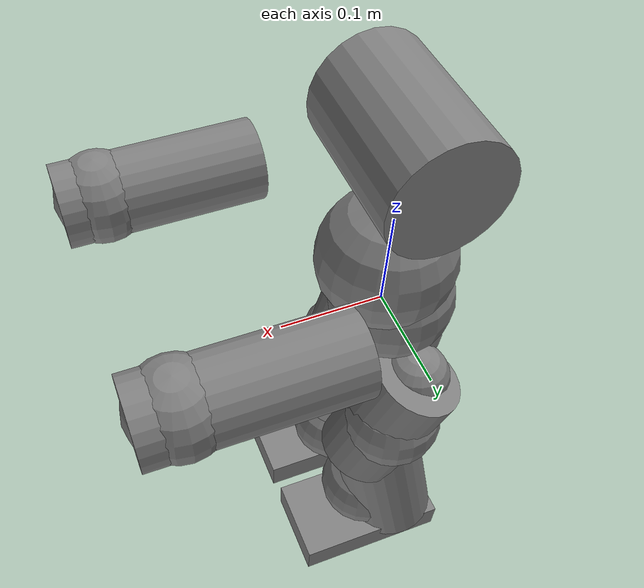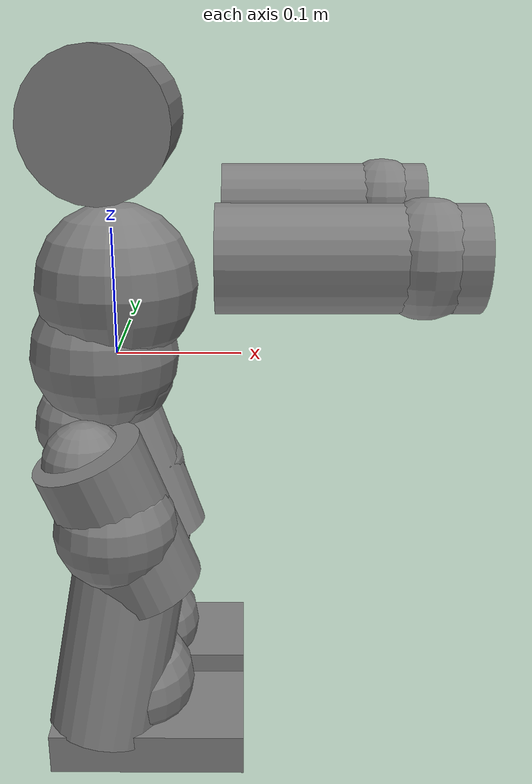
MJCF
<mujoco model="NAOH25V60">
  <compiler angle="radian"/>

  <worldbody>
    <geom size="0.04" pos="-0.03 0 -0.06"/>
    <geom size="0.0453" pos="0.0006 0 -0.015"/>
    <geom size="0.06" pos="-0.01 0 0"/>
    <geom size="0.0642" pos="0.0019 0 0.056"/>
    <body name="HeadYaw_link" pos="0 0 0.1265">
      <inertial pos="-1e-05 0 -0.02742" quat="0.70765 -0.00173495 0.00151894 0.706559" mass="0.07842" diaginertia="1.70396e-05 1.60324e-05 5.53348e-06"/>
      <joint name="HeadYaw" pos="0 0 0" axis="0 0 1" range="-2.08567 2.08567" actuatorfrcrange="-1.547 1.547"/>
      <body name="HeadPitch_link" quat="0.500002 -0.499999 -0.500001 -0.499997">
        <inertial pos="0.0544502 0.000377283 0.000506844" quat="0.999831 -0.00839856 -0.00270558 0.0161273" mass="1.90402" diaginertia="0.0037078 0.00362436 0.00247001"/>
        <joint name="HeadPitch" pos="0 0 0" axis="0 0 1" range="-0.671952 0.514872" actuatorfrcrange="-1.532 1.532"/>
        <geom size="0.053 0.0705" pos="0.053 0 0" quat="1.76038e-12 -1.32679e-06 1 -1.32679e-06" type="cylinder"/>
      </body>
    </body>
    <body name="LShoulderPitch_link" pos="0 0.098 0.1" quat="0.707105 -0.707108 0 0">
      <inertial pos="-0.00165 -0.000139999 -0.02663" quat="0.353499 0.572853 -0.442525 0.592494" mass="0.09304" diaginertia="2.02186e-05 1.91002e-05 1.30704e-05"/>
      <joint name="LShoulderPitch" pos="0 0 0" axis="0 0 1" range="-2.08567 2.08567" actuatorfrcrange="-1.329 1.329"/>
      <body name="LShoulderRoll_link" quat="0.500002 0.499999 -0.500001 0.499997">
        <inertial pos="0.00563 -0.02455 0.0033" quat="0.467645 0.46185 0.492756 0.570257" mass="0.15777" diaginertia="0.00027823 0.000242894 8.25818e-05"/>
        <joint name="LShoulderRoll" pos="0 0 0" axis="0 0 1" range="-0.314159 1.32645" actuatorfrcrange="-1.7835 1.7835"/>
        <body name="LElbowYaw_link" pos="0.015 -0.105 0" quat="0.707105 0.707108 0 0">
          <inertial pos="1.19332e-09 -0.00014 -0.02744" quat="-0.000545392 0.711779 -0.000696018 0.702403" mass="0.06483" diaginertia="2.76333e-05 2.66179e-05 5.592e-06"/>
          <joint name="LElbowYaw" pos="0 0 0" axis="0 0 1" range="-2.08567 2.08567" actuatorfrcrange="-1.547 1.547"/>
          <body name="LElbowRoll_link" quat="0.707105 -0.707108 0 0">
            <inertial pos="0.000206645 -0.0749538 5.58898e-05" quat="0.529427 0.528509 -0.470412 0.468079" mass="1.05536" diaginertia="0.00294834 0.00293619 0.000670399"/>
            <joint name="LElbowRoll" pos="0 0 0" axis="0 0 1" range="-1.54462 -0.0349066" actuatorfrcrange="-1.532 1.532"/>
            <geom size="0.036 0.08715" pos="0 -0.06485 0" quat="0.707105 0.707108 0 0" type="cylinder"/>
            <geom size="0.04" pos="0 -0.116 0" quat="0.707105 0 0 -0.707108"/>
            <body name="LWristYaw_link" pos="0 -0.05595 0" quat="0.707105 0.707108 0 0">
              <inertial pos="-0.000880001 0.00308 0.03434" quat="0.346526 0.607704 0.329318 0.634165" mass="0.18533" diaginertia="0.000137482 0.000131631 6.85194e-05"/>
              <joint name="LWristYaw" pos="0 0 0" axis="0 0 1" range="-1.82387 1.82387" actuatorfrcrange="-0.4075 0.4075"/>
            </body>
          </body>
        </body>
      </body>
    </body>
    <body name="LHipYawPitch_link" pos="0 0.05 -0.085" quat="0.270599 -0.65328 -0.653283 -0.270597">
      <inertial pos="0.00586237 -0.0183882 -0.012818" quat="0.708083 0.0259824 -0.435811 0.554988" mass="0.249404" diaginertia="0.000171156 0.000145675 0.000131938"/>
      <joint name="LHipYawPitch" pos="0 0 0" axis="0 0 1" range="-1.14529 0.740718" actuatorfrcrange="-3.348 3.348"/>
      <geom size="0.035" pos="0.00388908 -0.0225 -0.00742461" quat="0.270599 0.65328 0.653282 0.2706"/>
      <body name="LHipRoll_link" quat="0.65328 -0.653283 0.270597 0.270598">
        <inertial pos="-0.00515 -0.00029 -0.01549" quat="0.453959 0.527953 0.574067 0.430853" mass="0.14053" diaginertia="6.08587e-05 5.59269e-05 2.22526e-05"/>
        <joint name="LHipRoll" pos="0 0 0" axis="0 0 1" range="-0.379435 0.79046" actuatorfrcrange="-3.348 3.348"/>
        <body name="LHipPitch_link" quat="0.707105 0.707108 0 0">
          <inertial pos="-0.0440868 0.00137481 0.00323819" quat="0.570718 0.584458 0.376298 0.437137" mass="1.75759" diaginertia="0.00271235 0.002536 0.00190276"/>
          <joint name="LHipPitch" pos="0 0 0" axis="0 0 1" range="-1.53589 0.48398" actuatorfrcrange="-3.023 3.023"/>
          <geom size="0.045 0.066359" pos="-0.04 0.002225 0.002" quat="0.672459 -0.218628 -0.706414 -0.0313018" type="cylinder"/>
          <geom size="0.05" pos="-0.0435 0 0.006" quat="0.499998 0.5 0.500002 0.5"/>
          <body name="LKneePitch_link" pos="-0.1 0 0">
            <inertial pos="-0.0555768 -0.00198465 0.00358653" quat="0.388609 0.504824 0.584388 0.50262" mass="1.27576" diaginertia="0.00254977 0.00235446 0.00153436"/>
            <joint name="LKneePitch" pos="0 0 0" axis="0 0 1" range="-0.0923279 2.11255" actuatorfrcrange="-3.023 3.023"/>
            <geom size="0.047 0.0702" pos="-0.0575 -0.004 0.004" quat="0.348798 0.615092 -0.188299 -0.681575" type="cylinder"/>
            <body name="LAnklePitch_link" pos="-0.1029 0 0">
              <inertial pos="0.00935751 0.00805213 -0.00392102" quat="0.244148 0.667573 0.444782 0.544892" mass="0.657759" diaginertia="0.000598922 0.000588275 0.00056615"/>
              <joint name="LAnklePitch" pos="0 0 0" axis="0 0 1" range="-1.18944 0.922581" actuatorfrcrange="-3.023 3.023"/>
              <geom size="0.05" pos="0.01 0.01 -0.005" quat="0.499998 0.5 0.500002 0.5"/>
              <body name="LAnkleRoll_link" quat="0.707105 -0.707108 0 0">
                <inertial pos="-0.0283705 -0.00643226 0.0232425" quat="0.978902 -0.00086125 0.000229755 0.204327" mass="0.67584" diaginertia="0.00151112 0.00147942 0.000810478"/>
                <joint name="LAnkleRoll" pos="0 0 0" axis="0 0 1" range="-0.397761 0.768992" actuatorfrcrange="-3.348 3.348"/>
                <geom size="0.0175 0.08 0.045" pos="-0.027 -0.00750021 0.0225" quat="9.38184e-07 9.38187e-07 -0.707108 -0.707105" type="box"/>
              </body>
            </body>
          </body>
        </body>
      </body>
    </body>
    <body name="RHipYawPitch_link" pos="0 -0.05 -0.085" quat="0.65328 -0.270598 -0.270598 -0.653283">
      <inertial pos="0.00586237 -0.0183882 0.012818" quat="0.715071 -0.0754514 0.405013 0.564752" mass="0.249404" diaginertia="0.000179614 0.000155385 0.000130704"/>
      <joint name="RHipYawPitch" pos="0 0 0" axis="0 0 1" range="-1.14529 0.740718" actuatorfrcrange="-3.348 3.348"/>
      <geom size="0.035" pos="0.00388908 -0.0225 0.00742461" quat="0.65328 0.270597 0.270598 0.653283"/>
      <body name="RHipRoll_link" quat="0.65328 -0.653283 -0.270597 -0.270598">
        <inertial pos="-0.00515 0.00029 -0.01549" quat="0.431269 0.573083 0.528698 0.453941" mass="0.14053" diaginertia="6.08554e-05 5.59208e-05 2.2268e-05"/>
        <joint name="RHipRoll" pos="0 0 0" axis="0 0 1" range="-0.79046 0.379435" actuatorfrcrange="-3.348 3.348"/>
        <body name="RHipPitch_link" quat="0.707105 0.707108 0 0">
          <inertial pos="-0.0440868 0.00137481 -0.00323819" quat="0.48943 0.660626 0.399823 0.405184" mass="1.75759" diaginertia="0.00271296 0.00255859 0.00188171"/>
          <joint name="RHipPitch" pos="0 0 0" axis="0 0 1" range="-1.53589 0.48398" actuatorfrcrange="-3.0226 3.0226"/>
          <geom size="0.045 0.066359" pos="-0.04 0.002225 -0.002" quat="0.706413 -0.0313052 -0.672459 -0.218632" type="cylinder"/>
          <geom size="0.05" pos="-0.0435 0 -0.006" quat="0.499998 0.5 0.500002 0.5"/>
          <body name="RKneePitch_link" pos="-0.1 0 0">
            <inertial pos="-0.0555768 -0.00198465 -0.00358653" quat="0.491399 0.391143 0.464231 0.624519" mass="1.27576" diaginertia="0.00255207 0.00238362 0.0015015"/>
            <joint name="RKneePitch" pos="0 0 0" axis="0 0 1" range="-0.0923279 2.11255" actuatorfrcrange="-3.0226 3.0226"/>
            <geom size="0.047 0.0702" pos="-0.0575 -0.004 -0.004" quat="0.188295 -0.681575 -0.348803 0.615092" type="cylinder"/>
            <body name="RAnklePitch_link" pos="-0.1029 0 0">
              <inertial pos="0.00935751 0.00805213 0.00392102" quat="0.568567 0.335538 0.658202 0.361822" mass="0.657759" diaginertia="0.00059947 0.000585973 0.000567995"/>
              <joint name="RAnklePitch" pos="0 0 0" axis="0 0 1" range="-1.1863 0.932006" actuatorfrcrange="-3.0226 3.0226"/>
              <geom size="0.05" pos="0.01 0.01 0.005" quat="0.499998 0.5 0.500002 0.5"/>
              <body name="RAnkleRoll_link" quat="0.707105 -0.707108 0 0">
                <inertial pos="-0.0283705 0.00643194 0.0232424" quat="0.980132 0.000741722 0.000382099 -0.198346" mass="0.67584" diaginertia="0.00151073 0.0014788 0.000809756"/>
                <joint name="RAnkleRoll" pos="0 0 0" axis="0 0 1" range="-0.768992 0.397761" actuatorfrcrange="-3.348 3.348"/>
                <geom size="0.0175 0.08 0.045" pos="-0.027 0.00749979 0.0225" quat="9.38184e-07 9.38187e-07 -0.707108 -0.707105" type="box"/>
              </body>
            </body>
          </body>
        </body>
      </body>
    </body>
    <body name="RShoulderPitch_link" pos="0 -0.098 0.1" quat="0.707105 -0.707108 0 0">
      <inertial pos="-0.00165 -0.000140001 0.02663" quat="0.572853 0.353499 -0.592494 0.442525" mass="0.09304" diaginertia="2.02186e-05 1.91002e-05 1.30704e-05"/>
      <joint name="RShoulderPitch" pos="0 0 0" axis="0 0 1" range="-2.08567 2.08567" actuatorfrcrange="-1.329 1.329"/>
      <body name="RShoulderRoll_link" quat="0.500002 0.499999 -0.500001 0.499997">
        <inertial pos="-0.00563 -0.02455 0.0033" quat="0.556969 0.570609 0.359404 0.484788" mass="0.15777" diaginertia="0.000287934 0.00025515 8.56154e-05"/>
        <joint name="RShoulderRoll" pos="0 0 0" axis="0 0 1" range="-1.32645 0.314159" actuatorfrcrange="-1.783 1.783"/>
        <body name="RElbowYaw_link" pos="-0.015 -0.105 0" quat="0.707105 0.707108 0 0">
          <inertial pos="1.19332e-09 -0.00014 -0.02744" quat="-0.000545392 0.711779 -0.000696018 0.702403" mass="0.06483" diaginertia="2.76333e-05 2.66179e-05 5.592e-06"/>
          <joint name="RElbowYaw" pos="0 0 0" axis="0 0 1" range="-2.08567 2.08567" actuatorfrcrange="-1.547 1.547"/>
          <body name="RElbowRoll_link" quat="0.707105 -0.707108 0 0">
            <inertial pos="-0.000206645 -0.0749538 5.58898e-05" quat="0.520545 0.522832 -0.476779 0.477871" mass="1.05536" diaginertia="0.00294822 0.00293633 0.000670487"/>
            <joint name="RElbowRoll" pos="0 0 0" axis="0 0 1" range="0.0349066 1.54462" actuatorfrcrange="-1.532 1.532"/>
            <geom size="0.036 0.08715" pos="0 -0.06485 0" quat="0.707105 0.707108 0 0" type="cylinder"/>
            <geom size="0.04" pos="0 -0.116 0" quat="0.707105 0 0 -0.707108"/>
            <body name="RWristYaw_link" pos="0 -0.05595 0" quat="0.707105 0.707108 0 0">
              <inertial pos="0.000879999 0.00308 0.03434" quat="0.422432 0.617987 0.303847 0.589339" mass="0.18533" diaginertia="0.000139307 0.000131711 6.66137e-05"/>
              <joint name="RWristYaw" pos="0 0 0" axis="0 0 1" range="-1.82387 1.82387" actuatorfrcrange="-0.4075 0.4075"/>
            </body>
          </body>
        </body>
      </body>
    </body>
  </worldbody>
</mujoco>
